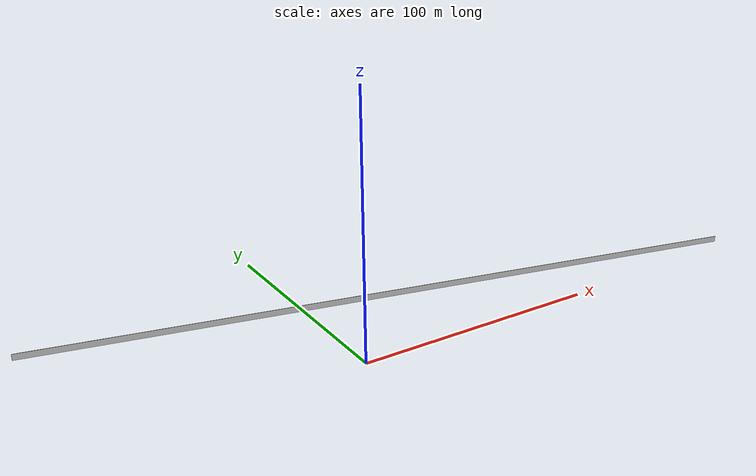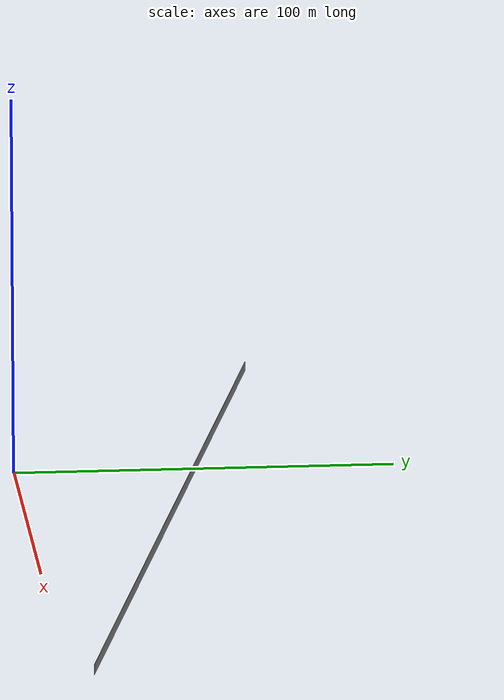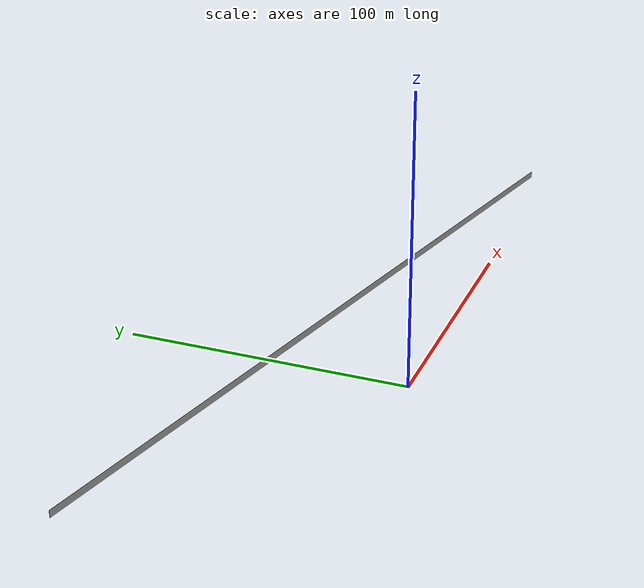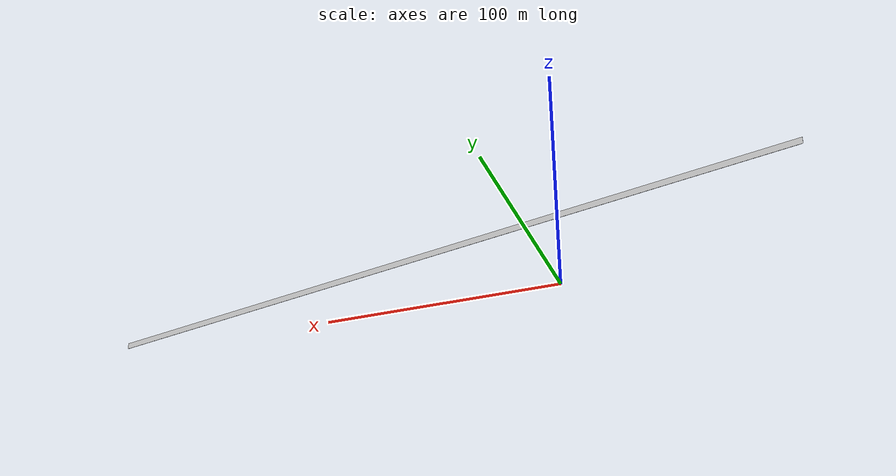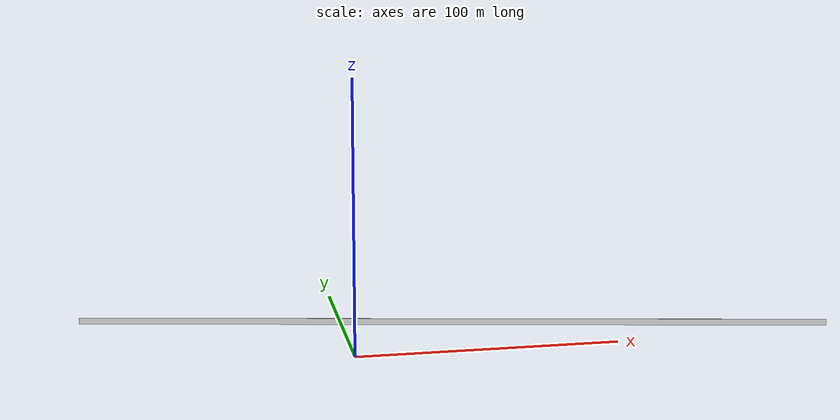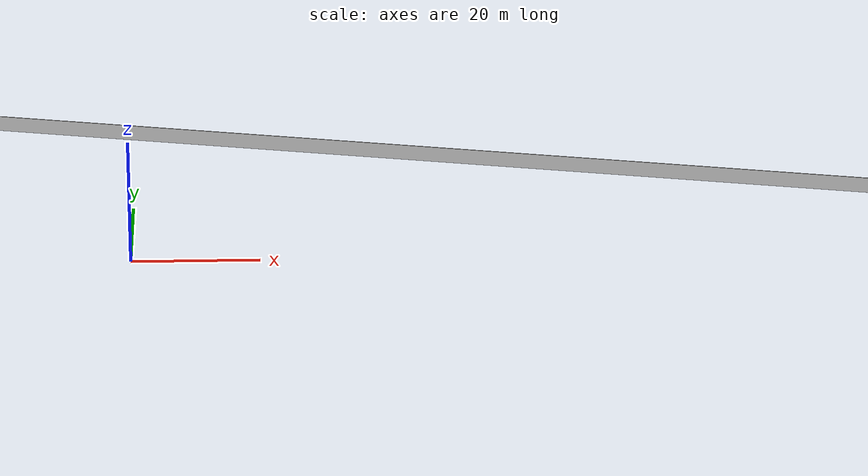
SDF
<?xml version="1.0" ?>
<sdf version="1.6">
  <model name="sps_2305">
    <pose frame="">0 0 0 0 -0 0</pose>
    <static>0</static>
    <self_collide>0</self_collide>
    <allow_auto_disable>0</allow_auto_disable>
    <link name="Wall1562">
      <kinematic>0</kinematic>
      <gravity>1</gravity>
      <self_collide>0</self_collide>
      <collision name="collision">
        <geometry>
          <box>
            <size>301.997 0.15 2.5</size>
          </box>
        </geometry>
        <pose frame="">0 0 0 0 -0 0</pose>
      </collision>
      <visual name="visual">
        <geometry>
          <box>
            <size>301.997 0.15 2.5</size>
          </box>
        </geometry>
        <pose frame="">0 0 0 0 -0 0</pose>
        <cast_shadows>1</cast_shadows>
        <transparency>0.0</transparency>
      </visual>
      <pose frame="">43.6293 38.542 1.25 0 0 -0.214252</pose>
    </link>
  </model>
</sdf>
